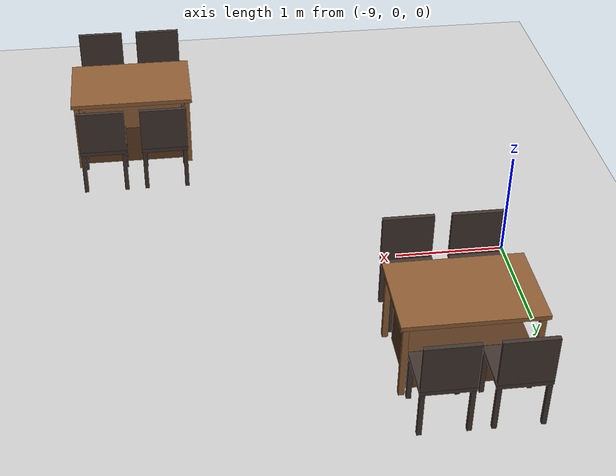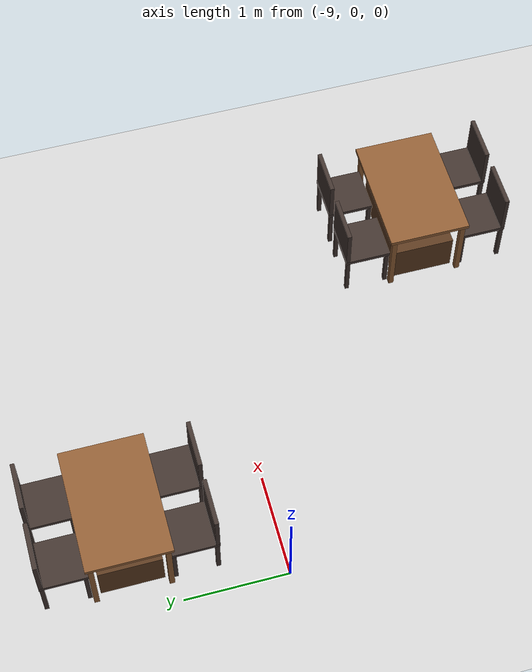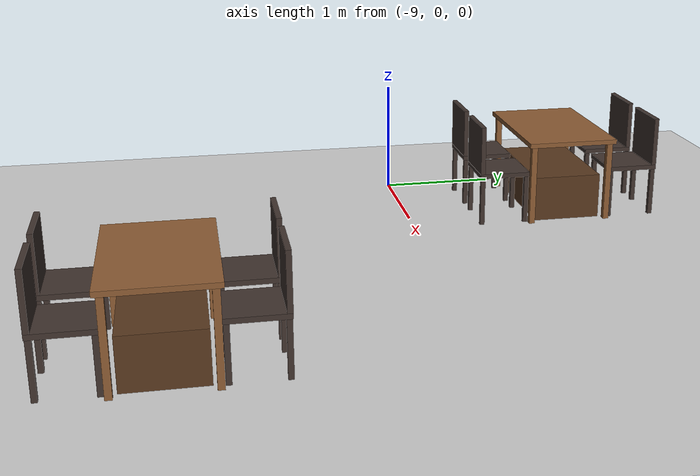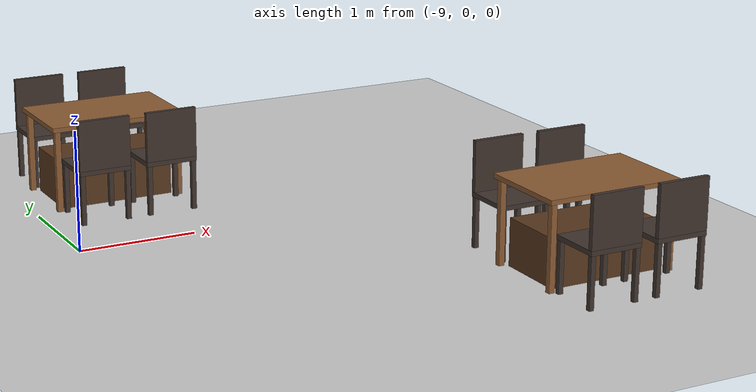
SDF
<sdf version="1.6">
 <world name="restaurant">
  <model name="ground_plane">
   <static>1</static>
   <link name="link">
    <collision name="collision">
     <geometry><plane><normal>0 0 1</normal><size>100 100</size></plane></geometry>
     <surface><friction><ode><mu>100</mu><mu2>50</mu2></ode></friction></surface>
    </collision>
    <visual name="visual">
     <cast_shadows>0</cast_shadows>
     <geometry><plane><normal>0 0 1</normal><size>100 100</size></plane></geometry>
     <material>
      <script><uri>file://media/materials/scripts/gazebo.material</uri><name>Gazebo/Grey</name></script>
     </material>
    </visual>
   </link>
  </model>
  <model name="table_0">
   <static>true</static>
   <pose>-8.2360 1.4091 0 0 0 0</pose>
   <link name="link">
    <collision name="base_collision">
     <pose>0.0000 0.0000 0.2000 0 0 0</pose>
     <geometry><box><size>1.0000 0.6000 0.4000</size></box></geometry>
    </collision>
    <visual name="base_visual">
     <pose>0.0000 0.0000 0.2000 0 0 0</pose>
     <geometry><box><size>1.0000 0.6000 0.4000</size></box></geometry>
     <material>
      <ambient>0.35 0.22 0.12 1</ambient>
      <diffuse>0.35 0.22 0.12 1</diffuse>
      <specular>0.05 0.05 0.05 1</specular>
     </material>
    </visual>
    <collision name="top_collision">
     <pose>0.0000 0.0000 0.7300 0 0 0</pose>
     <geometry><box><size>1.2000 0.8000 0.0400</size></box></geometry>
    </collision>
    <visual name="top_visual">
     <pose>0.0000 0.0000 0.7300 0 0 0</pose>
     <geometry><box><size>1.2000 0.8000 0.0400</size></box></geometry>
     <material>
      <ambient>0.55 0.36 0.2 1</ambient>
      <diffuse>0.55 0.36 0.2 1</diffuse>
      <specular>0.05 0.05 0.05 1</specular>
     </material>
    </visual>
    <collision name="leg0_collision">
     <pose>0.5500 0.3500 0.3550 0 0 0</pose>
     <geometry><box><size>0.0500 0.0500 0.7100</size></box></geometry>
    </collision>
    <visual name="leg0_visual">
     <pose>0.5500 0.3500 0.3550 0 0 0</pose>
     <geometry><box><size>0.0500 0.0500 0.7100</size></box></geometry>
     <material>
      <ambient>0.55 0.36 0.2 1</ambient>
      <diffuse>0.55 0.36 0.2 1</diffuse>
      <specular>0.05 0.05 0.05 1</specular>
     </material>
    </visual>
    <collision name="leg1_collision">
     <pose>0.5500 -0.3500 0.3550 0 0 0</pose>
     <geometry><box><size>0.0500 0.0500 0.7100</size></box></geometry>
    </collision>
    <visual name="leg1_visual">
     <pose>0.5500 -0.3500 0.3550 0 0 0</pose>
     <geometry><box><size>0.0500 0.0500 0.7100</size></box></geometry>
     <material>
      <ambient>0.55 0.36 0.2 1</ambient>
      <diffuse>0.55 0.36 0.2 1</diffuse>
      <specular>0.05 0.05 0.05 1</specular>
     </material>
    </visual>
    <collision name="leg2_collision">
     <pose>-0.5500 0.3500 0.3550 0 0 0</pose>
     <geometry><box><size>0.0500 0.0500 0.7100</size></box></geometry>
    </collision>
    <visual name="leg2_visual">
     <pose>-0.5500 0.3500 0.3550 0 0 0</pose>
     <geometry><box><size>0.0500 0.0500 0.7100</size></box></geometry>
     <material>
      <ambient>0.55 0.36 0.2 1</ambient>
      <diffuse>0.55 0.36 0.2 1</diffuse>
      <specular>0.05 0.05 0.05 1</specular>
     </material>
    </visual>
    <collision name="leg3_collision">
     <pose>-0.5500 -0.3500 0.3550 0 0 0</pose>
     <geometry><box><size>0.0500 0.0500 0.7100</size></box></geometry>
    </collision>
    <visual name="leg3_visual">
     <pose>-0.5500 -0.3500 0.3550 0 0 0</pose>
     <geometry><box><size>0.0500 0.0500 0.7100</size></box></geometry>
     <material>
      <ambient>0.55 0.36 0.2 1</ambient>
      <diffuse>0.55 0.36 0.2 1</diffuse>
      <specular>0.05 0.05 0.05 1</specular>
     </material>
    </visual>
    <collision name="chair0_seat_collision">
     <pose>-0.3000 0.6000 0.4500 0 0 0</pose>
     <geometry><box><size>0.4500 0.4500 0.0400</size></box></geometry>
    </collision>
    <visual name="chair0_seat_visual">
     <pose>-0.3000 0.6000 0.4500 0 0 0</pose>
     <geometry><box><size>0.4500 0.4500 0.0400</size></box></geometry>
     <material>
      <ambient>0.25 0.2 0.18 1</ambient>
      <diffuse>0.25 0.2 0.18 1</diffuse>
      <specular>0.05 0.05 0.05 1</specular>
     </material>
    </visual>
    <collision name="chair0_leg0_collision">
     <pose>-0.1000 0.8000 0.2150 0 0 0</pose>
     <geometry><box><size>0.0400 0.0400 0.4300</size></box></geometry>
    </collision>
    <visual name="chair0_leg0_visual">
     <pose>-0.1000 0.8000 0.2150 0 0 0</pose>
     <geometry><box><size>0.0400 0.0400 0.4300</size></box></geometry>
     <material>
      <ambient>0.25 0.2 0.18 1</ambient>
      <diffuse>0.25 0.2 0.18 1</diffuse>
      <specular>0.05 0.05 0.05 1</specular>
     </material>
    </visual>
    <collision name="chair0_leg1_collision">
     <pose>-0.1000 0.4000 0.2150 0 0 0</pose>
     <geometry><box><size>0.0400 0.0400 0.4300</size></box></geometry>
    </collision>
    <visual name="chair0_leg1_visual">
     <pose>-0.1000 0.4000 0.2150 0 0 0</pose>
     <geometry><box><size>0.0400 0.0400 0.4300</size></box></geometry>
     <material>
      <ambient>0.25 0.2 0.18 1</ambient>
      <diffuse>0.25 0.2 0.18 1</diffuse>
      <specular>0.05 0.05 0.05 1</specular>
     </material>
    </visual>
    <collision name="chair0_leg2_collision">
     <pose>-0.5000 0.8000 0.2150 0 0 0</pose>
     <geometry><box><size>0.0400 0.0400 0.4300</size></box></geometry>
    </collision>
    <visual name="chair0_leg2_visual">
     <pose>-0.5000 0.8000 0.2150 0 0 0</pose>
     <geometry><box><size>0.0400 0.0400 0.4300</size></box></geometry>
     <material>
      <ambient>0.25 0.2 0.18 1</ambient>
      <diffuse>0.25 0.2 0.18 1</diffuse>
      <specular>0.05 0.05 0.05 1</specular>
     </material>
    </visual>
    <collision name="chair0_leg3_collision">
     <pose>-0.5000 0.4000 0.2150 0 0 0</pose>
     <geometry><box><size>0.0400 0.0400 0.4300</size></box></geometry>
    </collision>
    <visual name="chair0_leg3_visual">
     <pose>-0.5000 0.4000 0.2150 0 0 0</pose>
     <geometry><box><size>0.0400 0.0400 0.4300</size></box></geometry>
     <material>
      <ambient>0.25 0.2 0.18 1</ambient>
      <diffuse>0.25 0.2 0.18 1</diffuse>
      <specular>0.05 0.05 0.05 1</specular>
     </material>
    </visual>
    <collision name="chair0_back_collision">
     <pose>-0.3000 0.8050 0.6850 0 0 0</pose>
     <geometry><box><size>0.4500 0.0400 0.4300</size></box></geometry>
    </collision>
    <visual name="chair0_back_visual">
     <pose>-0.3000 0.8050 0.6850 0 0 0</pose>
     <geometry><box><size>0.4500 0.0400 0.4300</size></box></geometry>
     <material>
      <ambient>0.25 0.2 0.18 1</ambient>
      <diffuse>0.25 0.2 0.18 1</diffuse>
      <specular>0.05 0.05 0.05 1</specular>
     </material>
    </visual>
    <collision name="chair1_seat_collision">
     <pose>-0.3000 -0.6000 0.4500 0 0 0</pose>
     <geometry><box><size>0.4500 0.4500 0.0400</size></box></geometry>
    </collision>
    <visual name="chair1_seat_visual">
     <pose>-0.3000 -0.6000 0.4500 0 0 0</pose>
     <geometry><box><size>0.4500 0.4500 0.0400</size></box></geometry>
     <material>
      <ambient>0.25 0.2 0.18 1</ambient>
      <diffuse>0.25 0.2 0.18 1</diffuse>
      <specular>0.05 0.05 0.05 1</specular>
     </material>
    </visual>
    <collision name="chair1_leg0_collision">
     <pose>-0.1000 -0.4000 0.2150 0 0 0</pose>
     <geometry><box><size>0.0400 0.0400 0.4300</size></box></geometry>
    </collision>
    <visual name="chair1_leg0_visual">
     <pose>-0.1000 -0.4000 0.2150 0 0 0</pose>
     <geometry><box><size>0.0400 0.0400 0.4300</size></box></geometry>
     <material>
      <ambient>0.25 0.2 0.18 1</ambient>
      <diffuse>0.25 0.2 0.18 1</diffuse>
      <specular>0.05 0.05 0.05 1</specular>
     </material>
    </visual>
    <collision name="chair1_leg1_collision">
     <pose>-0.1000 -0.8000 0.2150 0 0 0</pose>
     <geometry><box><size>0.0400 0.0400 0.4300</size></box></geometry>
    </collision>
    <visual name="chair1_leg1_visual">
     <pose>-0.1000 -0.8000 0.2150 0 0 0</pose>
     <geometry><box><size>0.0400 0.0400 0.4300</size></box></geometry>
     <material>
      <ambient>0.25 0.2 0.18 1</ambient>
      <diffuse>0.25 0.2 0.18 1</diffuse>
      <specular>0.05 0.05 0.05 1</specular>
     </material>
    </visual>
    <collision name="chair1_leg2_collision">
     <pose>-0.5000 -0.4000 0.2150 0 0 0</pose>
     <geometry><box><size>0.0400 0.0400 0.4300</size></box></geometry>
    </collision>
    <visual name="chair1_leg2_visual">
     <pose>-0.5000 -0.4000 0.2150 0 0 0</pose>
     <geometry><box><size>0.0400 0.0400 0.4300</size></box></geometry>
     <material>
      <ambient>0.25 0.2 0.18 1</ambient>
      <diffuse>0.25 0.2 0.18 1</diffuse>
      <specular>0.05 0.05 0.05 1</specular>
     </material>
    </visual>
    <collision name="chair1_leg3_collision">
     <pose>-0.5000 -0.8000 0.2150 0 0 0</pose>
     <geometry><box><size>0.0400 0.0400 0.4300</size></box></geometry>
    </collision>
    <visual name="chair1_leg3_visual">
     <pose>-0.5000 -0.8000 0.2150 0 0 0</pose>
     <geometry><box><size>0.0400 0.0400 0.4300</size></box></geometry>
     <material>
      <ambient>0.25 0.2 0.18 1</ambient>
      <diffuse>0.25 0.2 0.18 1</diffuse>
      <specular>0.05 0.05 0.05 1</specular>
     </material>
    </visual>
    <collision name="chair1_back_collision">
     <pose>-0.3000 -0.8050 0.6850 0 0 0</pose>
     <geometry><box><size>0.4500 0.0400 0.4300</size></box></geometry>
    </collision>
    <visual name="chair1_back_visual">
     <pose>-0.3000 -0.8050 0.6850 0 0 0</pose>
     <geometry><box><size>0.4500 0.0400 0.4300</size></box></geometry>
     <material>
      <ambient>0.25 0.2 0.18 1</ambient>
      <diffuse>0.25 0.2 0.18 1</diffuse>
      <specular>0.05 0.05 0.05 1</specular>
     </material>
    </visual>
    <collision name="chair2_seat_collision">
     <pose>0.3000 0.6000 0.4500 0 0 0</pose>
     <geometry><box><size>0.4500 0.4500 0.0400</size></box></geometry>
    </collision>
    <visual name="chair2_seat_visual">
     <pose>0.3000 0.6000 0.4500 0 0 0</pose>
     <geometry><box><size>0.4500 0.4500 0.0400</size></box></geometry>
     <material>
      <ambient>0.25 0.2 0.18 1</ambient>
      <diffuse>0.25 0.2 0.18 1</diffuse>
      <specular>0.05 0.05 0.05 1</specular>
     </material>
    </visual>
    <collision name="chair2_leg0_collision">
     <pose>0.5000 0.8000 0.2150 0 0 0</pose>
     <geometry><box><size>0.0400 0.0400 0.4300</size></box></geometry>
    </collision>
    <visual name="chair2_leg0_visual">
     <pose>0.5000 0.8000 0.2150 0 0 0</pose>
     <geometry><box><size>0.0400 0.0400 0.4300</size></box></geometry>
     <material>
      <ambient>0.25 0.2 0.18 1</ambient>
      <diffuse>0.25 0.2 0.18 1</diffuse>
      <specular>0.05 0.05 0.05 1</specular>
     </material>
    </visual>
    <collision name="chair2_leg1_collision">
     <pose>0.5000 0.4000 0.2150 0 0 0</pose>
     <geometry><box><size>0.0400 0.0400 0.4300</size></box></geometry>
    </collision>
    <visual name="chair2_leg1_visual">
     <pose>0.5000 0.4000 0.2150 0 0 0</pose>
     <geometry><box><size>0.0400 0.0400 0.4300</size></box></geometry>
     <material>
      <ambient>0.25 0.2 0.18 1</ambient>
      <diffuse>0.25 0.2 0.18 1</diffuse>
      <specular>0.05 0.05 0.05 1</specular>
     </material>
    </visual>
    <collision name="chair2_leg2_collision">
     <pose>0.1000 0.8000 0.2150 0 0 0</pose>
     <geometry><box><size>0.0400 0.0400 0.4300</size></box></geometry>
    </collision>
    <visual name="chair2_leg2_visual">
     <pose>0.1000 0.8000 0.2150 0 0 0</pose>
     <geometry><box><size>0.0400 0.0400 0.4300</size></box></geometry>
     <material>
      <ambient>0.25 0.2 0.18 1</ambient>
      <diffuse>0.25 0.2 0.18 1</diffuse>
      <specular>0.05 0.05 0.05 1</specular>
     </material>
    </visual>
    <collision name="chair2_leg3_collision">
     <pose>0.1000 0.4000 0.2150 0 0 0</pose>
     <geometry><box><size>0.0400 0.0400 0.4300</size></box></geometry>
    </collision>
    <visual name="chair2_leg3_visual">
     <pose>0.1000 0.4000 0.2150 0 0 0</pose>
     <geometry><box><size>0.0400 0.0400 0.4300</size></box></geometry>
     <material>
      <ambient>0.25 0.2 0.18 1</ambient>
      <diffuse>0.25 0.2 0.18 1</diffuse>
      <specular>0.05 0.05 0.05 1</specular>
     </material>
    </visual>
    <collision name="chair2_back_collision">
     <pose>0.3000 0.8050 0.6850 0 0 0</pose>
     <geometry><box><size>0.4500 0.0400 0.4300</size></box></geometry>
    </collision>
    <visual name="chair2_back_visual">
     <pose>0.3000 0.8050 0.6850 0 0 0</pose>
     <geometry><box><size>0.4500 0.0400 0.4300</size></box></geometry>
     <material>
      <ambient>0.25 0.2 0.18 1</ambient>
      <diffuse>0.25 0.2 0.18 1</diffuse>
      <specular>0.05 0.05 0.05 1</specular>
     </material>
    </visual>
    <collision name="chair3_seat_collision">
     <pose>0.3000 -0.6000 0.4500 0 0 0</pose>
     <geometry><box><size>0.4500 0.4500 0.0400</size></box></geometry>
    </collision>
    <visual name="chair3_seat_visual">
     <pose>0.3000 -0.6000 0.4500 0 0 0</pose>
     <geometry><box><size>0.4500 0.4500 0.0400</size></box></geometry>
     <material>
      <ambient>0.25 0.2 0.18 1</ambient>
      <diffuse>0.25 0.2 0.18 1</diffuse>
      <specular>0.05 0.05 0.05 1</specular>
     </material>
    </visual>
    <collision name="chair3_leg0_collision">
     <pose>0.5000 -0.4000 0.2150 0 0 0</pose>
     <geometry><box><size>0.0400 0.0400 0.4300</size></box></geometry>
    </collision>
    <visual name="chair3_leg0_visual">
     <pose>0.5000 -0.4000 0.2150 0 0 0</pose>
     <geometry><box><size>0.0400 0.0400 0.4300</size></box></geometry>
     <material>
      <ambient>0.25 0.2 0.18 1</ambient>
      <diffuse>0.25 0.2 0.18 1</diffuse>
      <specular>0.05 0.05 0.05 1</specular>
     </material>
    </visual>
    <collision name="chair3_leg1_collision">
     <pose>0.5000 -0.8000 0.2150 0 0 0</pose>
     <geometry><box><size>0.0400 0.0400 0.4300</size></box></geometry>
    </collision>
    <visual name="chair3_leg1_visual">
     <pose>0.5000 -0.8000 0.2150 0 0 0</pose>
     <geometry><box><size>0.0400 0.0400 0.4300</size></box></geometry>
     <material>
      <ambient>0.25 0.2 0.18 1</ambient>
      <diffuse>0.25 0.2 0.18 1</diffuse>
      <specular>0.05 0.05 0.05 1</specular>
     </material>
    </visual>
    <collision name="chair3_leg2_collision">
     <pose>0.1000 -0.4000 0.2150 0 0 0</pose>
     <geometry><box><size>0.0400 0.0400 0.4300</size></box></geometry>
    </collision>
    <visual name="chair3_leg2_visual">
     <pose>0.1000 -0.4000 0.2150 0 0 0</pose>
     <geometry><box><size>0.0400 0.0400 0.4300</size></box></geometry>
     <material>
      <ambient>0.25 0.2 0.18 1</ambient>
      <diffuse>0.25 0.2 0.18 1</diffuse>
      <specular>0.05 0.05 0.05 1</specular>
     </material>
    </visual>
    <collision name="chair3_leg3_collision">
     <pose>0.1000 -0.8000 0.2150 0 0 0</pose>
     <geometry><box><size>0.0400 0.0400 0.4300</size></box></geometry>
    </collision>
    <visual name="chair3_leg3_visual">
     <pose>0.1000 -0.8000 0.2150 0 0 0</pose>
     <geometry><box><size>0.0400 0.0400 0.4300</size></box></geometry>
     <material>
      <ambient>0.25 0.2 0.18 1</ambient>
      <diffuse>0.25 0.2 0.18 1</diffuse>
      <specular>0.05 0.05 0.05 1</specular>
     </material>
    </visual>
    <collision name="chair3_back_collision">
     <pose>0.3000 -0.8050 0.6850 0 0 0</pose>
     <geometry><box><size>0.4500 0.0400 0.4300</size></box></geometry>
    </collision>
    <visual name="chair3_back_visual">
     <pose>0.3000 -0.8050 0.6850 0 0 0</pose>
     <geometry><box><size>0.4500 0.0400 0.4300</size></box></geometry>
     <material>
      <ambient>0.25 0.2 0.18 1</ambient>
      <diffuse>0.25 0.2 0.18 1</diffuse>
      <specular>0.05 0.05 0.05 1</specular>
     </material>
    </visual>
   </link>
  </model>
  <model name="table_7">
   <static>true</static>
   <pose>-5.6360 -2.1909 0 0 0 0</pose>
   <link name="link">
    <collision name="base_collision">
     <pose>0.0000 0.0000 0.2000 0 0 0</pose>
     <geometry><box><size>1.0000 0.6000 0.4000</size></box></geometry>
    </collision>
    <visual name="base_visual">
     <pose>0.0000 0.0000 0.2000 0 0 0</pose>
     <geometry><box><size>1.0000 0.6000 0.4000</size></box></geometry>
     <material>
      <ambient>0.35 0.22 0.12 1</ambient>
      <diffuse>0.35 0.22 0.12 1</diffuse>
      <specular>0.05 0.05 0.05 1</specular>
     </material>
    </visual>
    <collision name="top_collision">
     <pose>0.0000 0.0000 0.7300 0 0 0</pose>
     <geometry><box><size>1.2000 0.8000 0.0400</size></box></geometry>
    </collision>
    <visual name="top_visual">
     <pose>0.0000 0.0000 0.7300 0 0 0</pose>
     <geometry><box><size>1.2000 0.8000 0.0400</size></box></geometry>
     <material>
      <ambient>0.55 0.36 0.2 1</ambient>
      <diffuse>0.55 0.36 0.2 1</diffuse>
      <specular>0.05 0.05 0.05 1</specular>
     </material>
    </visual>
    <collision name="leg0_collision">
     <pose>0.5500 0.3500 0.3550 0 0 0</pose>
     <geometry><box><size>0.0500 0.0500 0.7100</size></box></geometry>
    </collision>
    <visual name="leg0_visual">
     <pose>0.5500 0.3500 0.3550 0 0 0</pose>
     <geometry><box><size>0.0500 0.0500 0.7100</size></box></geometry>
     <material>
      <ambient>0.55 0.36 0.2 1</ambient>
      <diffuse>0.55 0.36 0.2 1</diffuse>
      <specular>0.05 0.05 0.05 1</specular>
     </material>
    </visual>
    <collision name="leg1_collision">
     <pose>0.5500 -0.3500 0.3550 0 0 0</pose>
     <geometry><box><size>0.0500 0.0500 0.7100</size></box></geometry>
    </collision>
    <visual name="leg1_visual">
     <pose>0.5500 -0.3500 0.3550 0 0 0</pose>
     <geometry><box><size>0.0500 0.0500 0.7100</size></box></geometry>
     <material>
      <ambient>0.55 0.36 0.2 1</ambient>
      <diffuse>0.55 0.36 0.2 1</diffuse>
      <specular>0.05 0.05 0.05 1</specular>
     </material>
    </visual>
    <collision name="leg2_collision">
     <pose>-0.5500 0.3500 0.3550 0 0 0</pose>
     <geometry><box><size>0.0500 0.0500 0.7100</size></box></geometry>
    </collision>
    <visual name="leg2_visual">
     <pose>-0.5500 0.3500 0.3550 0 0 0</pose>
     <geometry><box><size>0.0500 0.0500 0.7100</size></box></geometry>
     <material>
      <ambient>0.55 0.36 0.2 1</ambient>
      <diffuse>0.55 0.36 0.2 1</diffuse>
      <specular>0.05 0.05 0.05 1</specular>
     </material>
    </visual>
    <collision name="leg3_collision">
     <pose>-0.5500 -0.3500 0.3550 0 0 0</pose>
     <geometry><box><size>0.0500 0.0500 0.7100</size></box></geometry>
    </collision>
    <visual name="leg3_visual">
     <pose>-0.5500 -0.3500 0.3550 0 0 0</pose>
     <geometry><box><size>0.0500 0.0500 0.7100</size></box></geometry>
     <material>
      <ambient>0.55 0.36 0.2 1</ambient>
      <diffuse>0.55 0.36 0.2 1</diffuse>
      <specular>0.05 0.05 0.05 1</specular>
     </material>
    </visual>
    <collision name="chair0_seat_collision">
     <pose>-0.3000 0.6000 0.4500 0 0 0</pose>
     <geometry><box><size>0.4500 0.4500 0.0400</size></box></geometry>
    </collision>
    <visual name="chair0_seat_visual">
     <pose>-0.3000 0.6000 0.4500 0 0 0</pose>
     <geometry><box><size>0.4500 0.4500 0.0400</size></box></geometry>
     <material>
      <ambient>0.25 0.2 0.18 1</ambient>
      <diffuse>0.25 0.2 0.18 1</diffuse>
      <specular>0.05 0.05 0.05 1</specular>
     </material>
    </visual>
    <collision name="chair0_leg0_collision">
     <pose>-0.1000 0.8000 0.2150 0 0 0</pose>
     <geometry><box><size>0.0400 0.0400 0.4300</size></box></geometry>
    </collision>
    <visual name="chair0_leg0_visual">
     <pose>-0.1000 0.8000 0.2150 0 0 0</pose>
     <geometry><box><size>0.0400 0.0400 0.4300</size></box></geometry>
     <material>
      <ambient>0.25 0.2 0.18 1</ambient>
      <diffuse>0.25 0.2 0.18 1</diffuse>
      <specular>0.05 0.05 0.05 1</specular>
     </material>
    </visual>
    <collision name="chair0_leg1_collision">
     <pose>-0.1000 0.4000 0.2150 0 0 0</pose>
     <geometry><box><size>0.0400 0.0400 0.4300</size></box></geometry>
    </collision>
    <visual name="chair0_leg1_visual">
     <pose>-0.1000 0.4000 0.2150 0 0 0</pose>
     <geometry><box><size>0.0400 0.0400 0.4300</size></box></geometry>
     <material>
      <ambient>0.25 0.2 0.18 1</ambient>
      <diffuse>0.25 0.2 0.18 1</diffuse>
      <specular>0.05 0.05 0.05 1</specular>
     </material>
    </visual>
    <collision name="chair0_leg2_collision">
     <pose>-0.5000 0.8000 0.2150 0 0 0</pose>
     <geometry><box><size>0.0400 0.0400 0.4300</size></box></geometry>
    </collision>
    <visual name="chair0_leg2_visual">
     <pose>-0.5000 0.8000 0.2150 0 0 0</pose>
     <geometry><box><size>0.0400 0.0400 0.4300</size></box></geometry>
     <material>
      <ambient>0.25 0.2 0.18 1</ambient>
      <diffuse>0.25 0.2 0.18 1</diffuse>
      <specular>0.05 0.05 0.05 1</specular>
     </material>
    </visual>
    <collision name="chair0_leg3_collision">
     <pose>-0.5000 0.4000 0.2150 0 0 0</pose>
     <geometry><box><size>0.0400 0.0400 0.4300</size></box></geometry>
    </collision>
    <visual name="chair0_leg3_visual">
     <pose>-0.5000 0.4000 0.2150 0 0 0</pose>
     <geometry><box><size>0.0400 0.0400 0.4300</size></box></geometry>
     <material>
      <ambient>0.25 0.2 0.18 1</ambient>
      <diffuse>0.25 0.2 0.18 1</diffuse>
      <specular>0.05 0.05 0.05 1</specular>
     </material>
    </visual>
    <collision name="chair0_back_collision">
     <pose>-0.3000 0.8050 0.6850 0 0 0</pose>
     <geometry><box><size>0.4500 0.0400 0.4300</size></box></geometry>
    </collision>
    <visual name="chair0_back_visual">
     <pose>-0.3000 0.8050 0.6850 0 0 0</pose>
     <geometry><box><size>0.4500 0.0400 0.4300</size></box></geometry>
     <material>
      <ambient>0.25 0.2 0.18 1</ambient>
      <diffuse>0.25 0.2 0.18 1</diffuse>
      <specular>0.05 0.05 0.05 1</specular>
     </material>
    </visual>
    <collision name="chair1_seat_collision">
     <pose>-0.3000 -0.6000 0.4500 0 0 0</pose>
     <geometry><box><size>0.4500 0.4500 0.0400</size></box></geometry>
    </collision>
    <visual name="chair1_seat_visual">
     <pose>-0.3000 -0.6000 0.4500 0 0 0</pose>
     <geometry><box><size>0.4500 0.4500 0.0400</size></box></geometry>
     <material>
      <ambient>0.25 0.2 0.18 1</ambient>
      <diffuse>0.25 0.2 0.18 1</diffuse>
      <specular>0.05 0.05 0.05 1</specular>
     </material>
    </visual>
    <collision name="chair1_leg0_collision">
     <pose>-0.1000 -0.4000 0.2150 0 0 0</pose>
     <geometry><box><size>0.0400 0.0400 0.4300</size></box></geometry>
    </collision>
    <visual name="chair1_leg0_visual">
     <pose>-0.1000 -0.4000 0.2150 0 0 0</pose>
     <geometry><box><size>0.0400 0.0400 0.4300</size></box></geometry>
     <material>
      <ambient>0.25 0.2 0.18 1</ambient>
      <diffuse>0.25 0.2 0.18 1</diffuse>
      <specular>0.05 0.05 0.05 1</specular>
     </material>
    </visual>
    <collision name="chair1_leg1_collision">
     <pose>-0.1000 -0.8000 0.2150 0 0 0</pose>
     <geometry><box><size>0.0400 0.0400 0.4300</size></box></geometry>
    </collision>
    <visual name="chair1_leg1_visual">
     <pose>-0.1000 -0.8000 0.2150 0 0 0</pose>
     <geometry><box><size>0.0400 0.0400 0.4300</size></box></geometry>
     <material>
      <ambient>0.25 0.2 0.18 1</ambient>
      <diffuse>0.25 0.2 0.18 1</diffuse>
      <specular>0.05 0.05 0.05 1</specular>
     </material>
    </visual>
    <collision name="chair1_leg2_collision">
     <pose>-0.5000 -0.4000 0.2150 0 0 0</pose>
     <geometry><box><size>0.0400 0.0400 0.4300</size></box></geometry>
    </collision>
    <visual name="chair1_leg2_visual">
     <pose>-0.5000 -0.4000 0.2150 0 0 0</pose>
     <geometry><box><size>0.0400 0.0400 0.4300</size></box></geometry>
     <material>
      <ambient>0.25 0.2 0.18 1</ambient>
      <diffuse>0.25 0.2 0.18 1</diffuse>
      <specular>0.05 0.05 0.05 1</specular>
     </material>
    </visual>
    <collision name="chair1_leg3_collision">
     <pose>-0.5000 -0.8000 0.2150 0 0 0</pose>
     <geometry><box><size>0.0400 0.0400 0.4300</size></box></geometry>
    </collision>
    <visual name="chair1_leg3_visual">
     <pose>-0.5000 -0.8000 0.2150 0 0 0</pose>
     <geometry><box><size>0.0400 0.0400 0.4300</size></box></geometry>
     <material>
      <ambient>0.25 0.2 0.18 1</ambient>
      <diffuse>0.25 0.2 0.18 1</diffuse>
      <specular>0.05 0.05 0.05 1</specular>
     </material>
    </visual>
    <collision name="chair1_back_collision">
     <pose>-0.3000 -0.8050 0.6850 0 0 0</pose>
     <geometry><box><size>0.4500 0.0400 0.4300</size></box></geometry>
    </collision>
    <visual name="chair1_back_visual">
     <pose>-0.3000 -0.8050 0.6850 0 0 0</pose>
     <geometry><box><size>0.4500 0.0400 0.4300</size></box></geometry>
     <material>
      <ambient>0.25 0.2 0.18 1</ambient>
      <diffuse>0.25 0.2 0.18 1</diffuse>
      <specular>0.05 0.05 0.05 1</specular>
     </material>
    </visual>
    <collision name="chair2_seat_collision">
     <pose>0.3000 0.6000 0.4500 0 0 0</pose>
     <geometry><box><size>0.4500 0.4500 0.0400</size></box></geometry>
    </collision>
    <visual name="chair2_seat_visual">
     <pose>0.3000 0.6000 0.4500 0 0 0</pose>
     <geometry><box><size>0.4500 0.4500 0.0400</size></box></geometry>
     <material>
      <ambient>0.25 0.2 0.18 1</ambient>
      <diffuse>0.25 0.2 0.18 1</diffuse>
      <specular>0.05 0.05 0.05 1</specular>
     </material>
    </visual>
    <collision name="chair2_leg0_collision">
     <pose>0.5000 0.8000 0.2150 0 0 0</pose>
     <geometry><box><size>0.0400 0.0400 0.4300</size></box></geometry>
    </collision>
    <visual name="chair2_leg0_visual">
     <pose>0.5000 0.8000 0.2150 0 0 0</pose>
     <geometry><box><size>0.0400 0.0400 0.4300</size></box></geometry>
     <material>
      <ambient>0.25 0.2 0.18 1</ambient>
      <diffuse>0.25 0.2 0.18 1</diffuse>
      <specular>0.05 0.05 0.05 1</specular>
     </material>
    </visual>
    <collision name="chair2_leg1_collision">
     <pose>0.5000 0.4000 0.2150 0 0 0</pose>
     <geometry><box><size>0.0400 0.0400 0.4300</size></box></geometry>
    </collision>
    <visual name="chair2_leg1_visual">
     <pose>0.5000 0.4000 0.2150 0 0 0</pose>
     <geometry><box><size>0.0400 0.0400 0.4300</size></box></geometry>
     <material>
      <ambient>0.25 0.2 0.18 1</ambient>
      <diffuse>0.25 0.2 0.18 1</diffuse>
      <specular>0.05 0.05 0.05 1</specular>
     </material>
    </visual>
    <collision name="chair2_leg2_collision">
     <pose>0.1000 0.8000 0.2150 0 0 0</pose>
     <geometry><box><size>0.0400 0.0400 0.4300</size></box></geometry>
    </collision>
    <visual name="chair2_leg2_visual">
     <pose>0.1000 0.8000 0.2150 0 0 0</pose>
     <geometry><box><size>0.0400 0.0400 0.4300</size></box></geometry>
     <material>
      <ambient>0.25 0.2 0.18 1</ambient>
      <diffuse>0.25 0.2 0.18 1</diffuse>
      <specular>0.05 0.05 0.05 1</specular>
     </material>
    </visual>
    <collision name="chair2_leg3_collision">
     <pose>0.1000 0.4000 0.2150 0 0 0</pose>
     <geometry><box><size>0.0400 0.0400 0.4300</size></box></geometry>
    </collision>
    <visual name="chair2_leg3_visual">
     <pose>0.1000 0.4000 0.2150 0 0 0</pose>
     <geometry><box><size>0.0400 0.0400 0.4300</size></box></geometry>
     <material>
      <ambient>0.25 0.2 0.18 1</ambient>
      <diffuse>0.25 0.2 0.18 1</diffuse>
      <specular>0.05 0.05 0.05 1</specular>
     </material>
    </visual>
    <collision name="chair2_back_collision">
     <pose>0.3000 0.8050 0.6850 0 0 0</pose>
     <geometry><box><size>0.4500 0.0400 0.4300</size></box></geometry>
    </collision>
    <visual name="chair2_back_visual">
     <pose>0.3000 0.8050 0.6850 0 0 0</pose>
     <geometry><box><size>0.4500 0.0400 0.4300</size></box></geometry>
     <material>
      <ambient>0.25 0.2 0.18 1</ambient>
      <diffuse>0.25 0.2 0.18 1</diffuse>
      <specular>0.05 0.05 0.05 1</specular>
     </material>
    </visual>
    <collision name="chair3_seat_collision">
     <pose>0.3000 -0.6000 0.4500 0 0 0</pose>
     <geometry><box><size>0.4500 0.4500 0.0400</size></box></geometry>
    </collision>
    <visual name="chair3_seat_visual">
     <pose>0.3000 -0.6000 0.4500 0 0 0</pose>
     <geometry><box><size>0.4500 0.4500 0.0400</size></box></geometry>
     <material>
      <ambient>0.25 0.2 0.18 1</ambient>
      <diffuse>0.25 0.2 0.18 1</diffuse>
      <specular>0.05 0.05 0.05 1</specular>
     </material>
    </visual>
    <collision name="chair3_leg0_collision">
     <pose>0.5000 -0.4000 0.2150 0 0 0</pose>
     <geometry><box><size>0.0400 0.0400 0.4300</size></box></geometry>
    </collision>
    <visual name="chair3_leg0_visual">
     <pose>0.5000 -0.4000 0.2150 0 0 0</pose>
     <geometry><box><size>0.0400 0.0400 0.4300</size></box></geometry>
     <material>
      <ambient>0.25 0.2 0.18 1</ambient>
      <diffuse>0.25 0.2 0.18 1</diffuse>
      <specular>0.05 0.05 0.05 1</specular>
     </material>
    </visual>
    <collision name="chair3_leg1_collision">
     <pose>0.5000 -0.8000 0.2150 0 0 0</pose>
     <geometry><box><size>0.0400 0.0400 0.4300</size></box></geometry>
    </collision>
    <visual name="chair3_leg1_visual">
     <pose>0.5000 -0.8000 0.2150 0 0 0</pose>
     <geometry><box><size>0.0400 0.0400 0.4300</size></box></geometry>
     <material>
      <ambient>0.25 0.2 0.18 1</ambient>
      <diffuse>0.25 0.2 0.18 1</diffuse>
      <specular>0.05 0.05 0.05 1</specular>
     </material>
    </visual>
    <collision name="chair3_leg2_collision">
     <pose>0.1000 -0.4000 0.2150 0 0 0</pose>
     <geometry><box><size>0.0400 0.0400 0.4300</size></box></geometry>
    </collision>
    <visual name="chair3_leg2_visual">
     <pose>0.1000 -0.4000 0.2150 0 0 0</pose>
     <geometry><box><size>0.0400 0.0400 0.4300</size></box></geometry>
     <material>
      <ambient>0.25 0.2 0.18 1</ambient>
      <diffuse>0.25 0.2 0.18 1</diffuse>
      <specular>0.05 0.05 0.05 1</specular>
     </material>
    </visual>
    <collision name="chair3_leg3_collision">
     <pose>0.1000 -0.8000 0.2150 0 0 0</pose>
     <geometry><box><size>0.0400 0.0400 0.4300</size></box></geometry>
    </collision>
    <visual name="chair3_leg3_visual">
     <pose>0.1000 -0.8000 0.2150 0 0 0</pose>
     <geometry><box><size>0.0400 0.0400 0.4300</size></box></geometry>
     <material>
      <ambient>0.25 0.2 0.18 1</ambient>
      <diffuse>0.25 0.2 0.18 1</diffuse>
      <specular>0.05 0.05 0.05 1</specular>
     </material>
    </visual>
    <collision name="chair3_back_collision">
     <pose>0.3000 -0.8050 0.6850 0 0 0</pose>
     <geometry><box><size>0.4500 0.0400 0.4300</size></box></geometry>
    </collision>
    <visual name="chair3_back_visual">
     <pose>0.3000 -0.8050 0.6850 0 0 0</pose>
     <geometry><box><size>0.4500 0.0400 0.4300</size></box></geometry>
     <material>
      <ambient>0.25 0.2 0.18 1</ambient>
      <diffuse>0.25 0.2 0.18 1</diffuse>
      <specular>0.05 0.05 0.05 1</specular>
     </material>
    </visual>
   </link>
  </model>
 </world>
</sdf>
